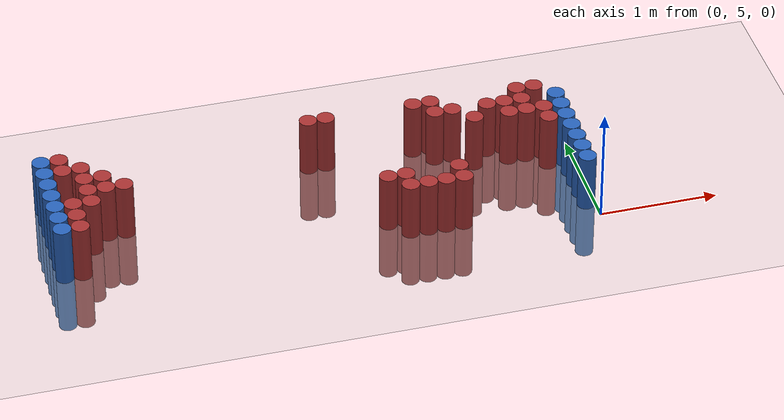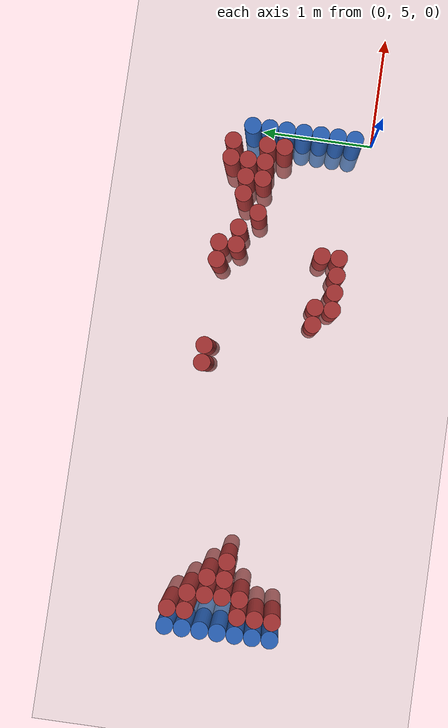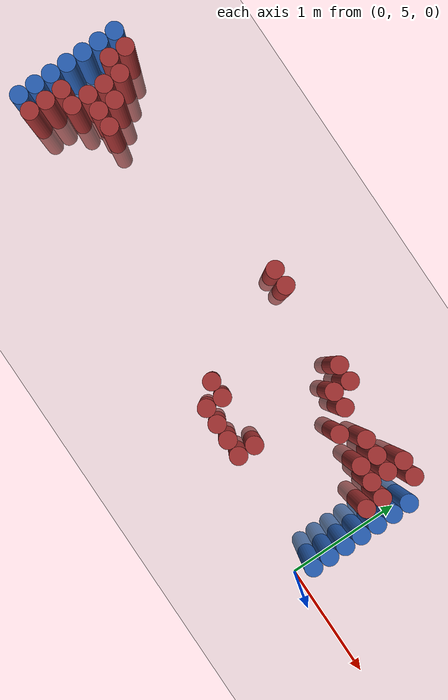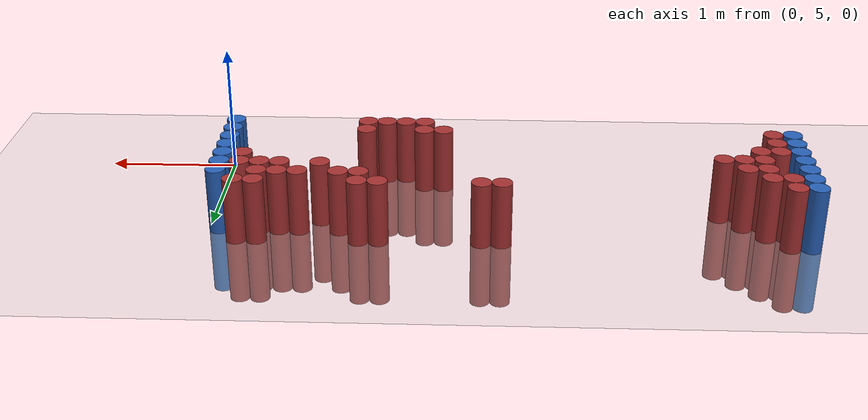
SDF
<sdf version="1.6">
 <world name="default">
  <model name="ground_plane">
   <static>1</static>
   <link name="link">
    <collision name="collision">
     <geometry><plane><normal>0 0 1</normal><size>100 100</size></plane></geometry>
     <surface><friction><ode><mu>100</mu><mu2>50</mu2></ode></friction></surface>
    </collision>
    <visual name="visual">
     <cast_shadows>0</cast_shadows>
     <geometry><plane><normal>0 0 1</normal><size>100 100</size></plane></geometry>
     <material>
      <script><uri>file://media/materials/scripts/gazebo.material</uri><name>Gazebo/Grey</name></script>
     </material>
    </visual>
   </link>
  </model>
  <model name="unit_cylinder_97">
   <static>1</static>
   <pose>-4.425000 5.325000 0.000000 0.000000 0.000000 0.000000</pose>
   <link name="link">
    <inertial>
     <mass>1</mass>
     <inertia><ixx>0.145833</ixx><ixy>0</ixy><ixz>0</ixz><iyy>0.145833</iyy><iyz>0</iyz><izz>0.125</izz></inertia>
    </inertial>
    <collision name="collision">
     <geometry><cylinder><radius>0.075000</radius><length>1</length></cylinder></geometry>
    </collision>
    <visual name="visual">
     <geometry><cylinder><radius>0.075000</radius><length>1</length></cylinder></geometry>
     <material>
      <ambient>0.152000 0.379000 0.720000 1</ambient>
      <diffuse>0.152000 0.379000 0.720000 1</diffuse>
     </material>
     <material>
      <script><name>Gazebo/Grey</name><uri>file://media/materials/scripts/gazebo.material</uri></script>
     </material>
    </visual>
   </link>
  </model>
  <model name="unit_cylinder_98">
   <static>1</static>
   <pose>-4.425000 5.475000 0.000000 0.000000 0.000000 0.000000</pose>
   <link name="link">
    <inertial>
     <mass>1</mass>
     <inertia><ixx>0.145833</ixx><ixy>0</ixy><ixz>0</ixz><iyy>0.145833</iyy><iyz>0</iyz><izz>0.125</izz></inertia>
    </inertial>
    <collision name="collision">
     <geometry><cylinder><radius>0.075000</radius><length>1</length></cylinder></geometry>
    </collision>
    <visual name="visual">
     <geometry><cylinder><radius>0.075000</radius><length>1</length></cylinder></geometry>
     <material>
      <ambient>0.152000 0.379000 0.720000 1</ambient>
      <diffuse>0.152000 0.379000 0.720000 1</diffuse>
     </material>
     <material>
      <script><name>Gazebo/Grey</name><uri>file://media/materials/scripts/gazebo.material</uri></script>
     </material>
    </visual>
   </link>
  </model>
  <model name="unit_cylinder_99">
   <static>1</static>
   <pose>-4.425000 5.625000 0.000000 0.000000 0.000000 0.000000</pose>
   <link name="link">
    <inertial>
     <mass>1</mass>
     <inertia><ixx>0.145833</ixx><ixy>0</ixy><ixz>0</ixz><iyy>0.145833</iyy><iyz>0</iyz><izz>0.125</izz></inertia>
    </inertial>
    <collision name="collision">
     <geometry><cylinder><radius>0.075000</radius><length>1</length></cylinder></geometry>
    </collision>
    <visual name="visual">
     <geometry><cylinder><radius>0.075000</radius><length>1</length></cylinder></geometry>
     <material>
      <ambient>0.152000 0.379000 0.720000 1</ambient>
      <diffuse>0.152000 0.379000 0.720000 1</diffuse>
     </material>
     <material>
      <script><name>Gazebo/Grey</name><uri>file://media/materials/scripts/gazebo.material</uri></script>
     </material>
    </visual>
   </link>
  </model>
  <model name="unit_cylinder_100">
   <static>1</static>
   <pose>-4.425000 5.775000 0.000000 0.000000 0.000000 0.000000</pose>
   <link name="link">
    <inertial>
     <mass>1</mass>
     <inertia><ixx>0.145833</ixx><ixy>0</ixy><ixz>0</ixz><iyy>0.145833</iyy><iyz>0</iyz><izz>0.125</izz></inertia>
    </inertial>
    <collision name="collision">
     <geometry><cylinder><radius>0.075000</radius><length>1</length></cylinder></geometry>
    </collision>
    <visual name="visual">
     <geometry><cylinder><radius>0.075000</radius><length>1</length></cylinder></geometry>
     <material>
      <ambient>0.152000 0.379000 0.720000 1</ambient>
      <diffuse>0.152000 0.379000 0.720000 1</diffuse>
     </material>
     <material>
      <script><name>Gazebo/Grey</name><uri>file://media/materials/scripts/gazebo.material</uri></script>
     </material>
    </visual>
   </link>
  </model>
  <model name="unit_cylinder_101">
   <static>1</static>
   <pose>-4.425000 5.925000 0.000000 0.000000 0.000000 0.000000</pose>
   <link name="link">
    <inertial>
     <mass>1</mass>
     <inertia><ixx>0.145833</ixx><ixy>0</ixy><ixz>0</ixz><iyy>0.145833</iyy><iyz>0</iyz><izz>0.125</izz></inertia>
    </inertial>
    <collision name="collision">
     <geometry><cylinder><radius>0.075000</radius><length>1</length></cylinder></geometry>
    </collision>
    <visual name="visual">
     <geometry><cylinder><radius>0.075000</radius><length>1</length></cylinder></geometry>
     <material>
      <ambient>0.152000 0.379000 0.720000 1</ambient>
      <diffuse>0.152000 0.379000 0.720000 1</diffuse>
     </material>
     <material>
      <script><name>Gazebo/Grey</name><uri>file://media/materials/scripts/gazebo.material</uri></script>
     </material>
    </visual>
   </link>
  </model>
  <model name="unit_cylinder_102">
   <static>1</static>
   <pose>-4.425000 6.075000 0.000000 0.000000 0.000000 0.000000</pose>
   <link name="link">
    <inertial>
     <mass>1</mass>
     <inertia><ixx>0.145833</ixx><ixy>0</ixy><ixz>0</ixz><iyy>0.145833</iyy><iyz>0</iyz><izz>0.125</izz></inertia>
    </inertial>
    <collision name="collision">
     <geometry><cylinder><radius>0.075000</radius><length>1</length></cylinder></geometry>
    </collision>
    <visual name="visual">
     <geometry><cylinder><radius>0.075000</radius><length>1</length></cylinder></geometry>
     <material>
      <ambient>0.152000 0.379000 0.720000 1</ambient>
      <diffuse>0.152000 0.379000 0.720000 1</diffuse>
     </material>
     <material>
      <script><name>Gazebo/Grey</name><uri>file://media/materials/scripts/gazebo.material</uri></script>
     </material>
    </visual>
   </link>
  </model>
  <model name="unit_cylinder_103">
   <static>1</static>
   <pose>-4.425000 6.225000 0.000000 0.000000 0.000000 0.000000</pose>
   <link name="link">
    <inertial>
     <mass>1</mass>
     <inertia><ixx>0.145833</ixx><ixy>0</ixy><ixz>0</ixz><iyy>0.145833</iyy><iyz>0</iyz><izz>0.125</izz></inertia>
    </inertial>
    <collision name="collision">
     <geometry><cylinder><radius>0.075000</radius><length>1</length></cylinder></geometry>
    </collision>
    <visual name="visual">
     <geometry><cylinder><radius>0.075000</radius><length>1</length></cylinder></geometry>
     <material>
      <ambient>0.152000 0.379000 0.720000 1</ambient>
      <diffuse>0.152000 0.379000 0.720000 1</diffuse>
     </material>
     <material>
      <script><name>Gazebo/Grey</name><uri>file://media/materials/scripts/gazebo.material</uri></script>
     </material>
    </visual>
   </link>
  </model>
  <model name="unit_cylinder_127">
   <static>1</static>
   <pose>-4.275000 5.325000 0.000000 0.000000 0.000000 0.000000</pose>
   <link name="link">
    <inertial>
     <mass>1</mass>
     <inertia><ixx>0.145833</ixx><ixy>0</ixy><ixz>0</ixz><iyy>0.145833</iyy><iyz>0</iyz><izz>0.125</izz></inertia>
    </inertial>
    <collision name="collision">
     <geometry><cylinder><radius>0.075000</radius><length>1</length></cylinder></geometry>
    </collision>
    <visual name="visual">
     <geometry><cylinder><radius>0.075000</radius><length>1</length></cylinder></geometry>
     <material>
      <ambient>0.648000 0.192000 0.192000 1</ambient>
      <diffuse>0.648000 0.192000 0.192000 1</diffuse>
     </material>
     <material>
      <script><name>Gazebo/Grey</name><uri>file://media/materials/scripts/gazebo.material</uri></script>
     </material>
    </visual>
   </link>
  </model>
  <model name="unit_cylinder_128">
   <static>1</static>
   <pose>-4.275000 5.475000 0.000000 0.000000 0.000000 0.000000</pose>
   <link name="link">
    <inertial>
     <mass>1</mass>
     <inertia><ixx>0.145833</ixx><ixy>0</ixy><ixz>0</ixz><iyy>0.145833</iyy><iyz>0</iyz><izz>0.125</izz></inertia>
    </inertial>
    <collision name="collision">
     <geometry><cylinder><radius>0.075000</radius><length>1</length></cylinder></geometry>
    </collision>
    <visual name="visual">
     <geometry><cylinder><radius>0.075000</radius><length>1</length></cylinder></geometry>
     <material>
      <ambient>0.648000 0.192000 0.192000 1</ambient>
      <diffuse>0.648000 0.192000 0.192000 1</diffuse>
     </material>
     <material>
      <script><name>Gazebo/Grey</name><uri>file://media/materials/scripts/gazebo.material</uri></script>
     </material>
    </visual>
   </link>
  </model>
  <model name="unit_cylinder_129">
   <static>1</static>
   <pose>-4.275000 5.625000 0.000000 0.000000 0.000000 0.000000</pose>
   <link name="link">
    <inertial>
     <mass>1</mass>
     <inertia><ixx>0.145833</ixx><ixy>0</ixy><ixz>0</ixz><iyy>0.145833</iyy><iyz>0</iyz><izz>0.125</izz></inertia>
    </inertial>
    <collision name="collision">
     <geometry><cylinder><radius>0.075000</radius><length>1</length></cylinder></geometry>
    </collision>
    <visual name="visual">
     <geometry><cylinder><radius>0.075000</radius><length>1</length></cylinder></geometry>
     <material>
      <ambient>0.648000 0.192000 0.192000 1</ambient>
      <diffuse>0.648000 0.192000 0.192000 1</diffuse>
     </material>
     <material>
      <script><name>Gazebo/Grey</name><uri>file://media/materials/scripts/gazebo.material</uri></script>
     </material>
    </visual>
   </link>
  </model>
  <model name="unit_cylinder_130">
   <static>1</static>
   <pose>-4.275000 6.075000 0.000000 0.000000 0.000000 0.000000</pose>
   <link name="link">
    <inertial>
     <mass>1</mass>
     <inertia><ixx>0.145833</ixx><ixy>0</ixy><ixz>0</ixz><iyy>0.145833</iyy><iyz>0</iyz><izz>0.125</izz></inertia>
    </inertial>
    <collision name="collision">
     <geometry><cylinder><radius>0.075000</radius><length>1</length></cylinder></geometry>
    </collision>
    <visual name="visual">
     <geometry><cylinder><radius>0.075000</radius><length>1</length></cylinder></geometry>
     <material>
      <ambient>0.648000 0.192000 0.192000 1</ambient>
      <diffuse>0.648000 0.192000 0.192000 1</diffuse>
     </material>
     <material>
      <script><name>Gazebo/Grey</name><uri>file://media/materials/scripts/gazebo.material</uri></script>
     </material>
    </visual>
   </link>
  </model>
  <model name="unit_cylinder_131">
   <static>1</static>
   <pose>-4.275000 6.225000 0.000000 0.000000 0.000000 0.000000</pose>
   <link name="link">
    <inertial>
     <mass>1</mass>
     <inertia><ixx>0.145833</ixx><ixy>0</ixy><ixz>0</ixz><iyy>0.145833</iyy><iyz>0</iyz><izz>0.125</izz></inertia>
    </inertial>
    <collision name="collision">
     <geometry><cylinder><radius>0.075000</radius><length>1</length></cylinder></geometry>
    </collision>
    <visual name="visual">
     <geometry><cylinder><radius>0.075000</radius><length>1</length></cylinder></geometry>
     <material>
      <ambient>0.648000 0.192000 0.192000 1</ambient>
      <diffuse>0.648000 0.192000 0.192000 1</diffuse>
     </material>
     <material>
      <script><name>Gazebo/Grey</name><uri>file://media/materials/scripts/gazebo.material</uri></script>
     </material>
    </visual>
   </link>
  </model>
  <model name="unit_cylinder_151">
   <static>1</static>
   <pose>-4.125000 5.625000 0.000000 0.000000 0.000000 0.000000</pose>
   <link name="link">
    <inertial>
     <mass>1</mass>
     <inertia><ixx>0.145833</ixx><ixy>0</ixy><ixz>0</ixz><iyy>0.145833</iyy><iyz>0</iyz><izz>0.125</izz></inertia>
    </inertial>
    <collision name="collision">
     <geometry><cylinder><radius>0.075000</radius><length>1</length></cylinder></geometry>
    </collision>
    <visual name="visual">
     <geometry><cylinder><radius>0.075000</radius><length>1</length></cylinder></geometry>
     <material>
      <ambient>0.648000 0.192000 0.192000 1</ambient>
      <diffuse>0.648000 0.192000 0.192000 1</diffuse>
     </material>
     <material>
      <script><name>Gazebo/Grey</name><uri>file://media/materials/scripts/gazebo.material</uri></script>
     </material>
    </visual>
   </link>
  </model>
  <model name="unit_cylinder_152">
   <static>1</static>
   <pose>-4.125000 5.775000 0.000000 0.000000 0.000000 0.000000</pose>
   <link name="link">
    <inertial>
     <mass>1</mass>
     <inertia><ixx>0.145833</ixx><ixy>0</ixy><ixz>0</ixz><iyy>0.145833</iyy><iyz>0</iyz><izz>0.125</izz></inertia>
    </inertial>
    <collision name="collision">
     <geometry><cylinder><radius>0.075000</radius><length>1</length></cylinder></geometry>
    </collision>
    <visual name="visual">
     <geometry><cylinder><radius>0.075000</radius><length>1</length></cylinder></geometry>
     <material>
      <ambient>0.648000 0.192000 0.192000 1</ambient>
      <diffuse>0.648000 0.192000 0.192000 1</diffuse>
     </material>
     <material>
      <script><name>Gazebo/Grey</name><uri>file://media/materials/scripts/gazebo.material</uri></script>
     </material>
    </visual>
   </link>
  </model>
  <model name="unit_cylinder_153">
   <static>1</static>
   <pose>-4.125000 5.925000 0.000000 0.000000 0.000000 0.000000</pose>
   <link name="link">
    <inertial>
     <mass>1</mass>
     <inertia><ixx>0.145833</ixx><ixy>0</ixy><ixz>0</ixz><iyy>0.145833</iyy><iyz>0</iyz><izz>0.125</izz></inertia>
    </inertial>
    <collision name="collision">
     <geometry><cylinder><radius>0.075000</radius><length>1</length></cylinder></geometry>
    </collision>
    <visual name="visual">
     <geometry><cylinder><radius>0.075000</radius><length>1</length></cylinder></geometry>
     <material>
      <ambient>0.648000 0.192000 0.192000 1</ambient>
      <diffuse>0.648000 0.192000 0.192000 1</diffuse>
     </material>
     <material>
      <script><name>Gazebo/Grey</name><uri>file://media/materials/scripts/gazebo.material</uri></script>
     </material>
    </visual>
   </link>
  </model>
  <model name="unit_cylinder_154">
   <static>1</static>
   <pose>-4.125000 6.075000 0.000000 0.000000 0.000000 0.000000</pose>
   <link name="link">
    <inertial>
     <mass>1</mass>
     <inertia><ixx>0.145833</ixx><ixy>0</ixy><ixz>0</ixz><iyy>0.145833</iyy><iyz>0</iyz><izz>0.125</izz></inertia>
    </inertial>
    <collision name="collision">
     <geometry><cylinder><radius>0.075000</radius><length>1</length></cylinder></geometry>
    </collision>
    <visual name="visual">
     <geometry><cylinder><radius>0.075000</radius><length>1</length></cylinder></geometry>
     <material>
      <ambient>0.648000 0.192000 0.192000 1</ambient>
      <diffuse>0.648000 0.192000 0.192000 1</diffuse>
     </material>
     <material>
      <script><name>Gazebo/Grey</name><uri>file://media/materials/scripts/gazebo.material</uri></script>
     </material>
    </visual>
   </link>
  </model>
  <model name="unit_cylinder_158">
   <static>1</static>
   <pose>-3.975000 5.775000 0.000000 0.000000 0.000000 0.000000</pose>
   <link name="link">
    <inertial>
     <mass>1</mass>
     <inertia><ixx>0.145833</ixx><ixy>0</ixy><ixz>0</ixz><iyy>0.145833</iyy><iyz>0</iyz><izz>0.125</izz></inertia>
    </inertial>
    <collision name="collision">
     <geometry><cylinder><radius>0.075000</radius><length>1</length></cylinder></geometry>
    </collision>
    <visual name="visual">
     <geometry><cylinder><radius>0.075000</radius><length>1</length></cylinder></geometry>
     <material>
      <ambient>0.648000 0.192000 0.192000 1</ambient>
      <diffuse>0.648000 0.192000 0.192000 1</diffuse>
     </material>
     <material>
      <script><name>Gazebo/Grey</name><uri>file://media/materials/scripts/gazebo.material</uri></script>
     </material>
    </visual>
   </link>
  </model>
  <model name="unit_cylinder_159">
   <static>1</static>
   <pose>-3.975000 5.925000 0.000000 0.000000 0.000000 0.000000</pose>
   <link name="link">
    <inertial>
     <mass>1</mass>
     <inertia><ixx>0.145833</ixx><ixy>0</ixy><ixz>0</ixz><iyy>0.145833</iyy><iyz>0</iyz><izz>0.125</izz></inertia>
    </inertial>
    <collision name="collision">
     <geometry><cylinder><radius>0.075000</radius><length>1</length></cylinder></geometry>
    </collision>
    <visual name="visual">
     <geometry><cylinder><radius>0.075000</radius><length>1</length></cylinder></geometry>
     <material>
      <ambient>0.648000 0.192000 0.192000 1</ambient>
      <diffuse>0.648000 0.192000 0.192000 1</diffuse>
     </material>
     <material>
      <script><name>Gazebo/Grey</name><uri>file://media/materials/scripts/gazebo.material</uri></script>
     </material>
    </visual>
   </link>
  </model>
  <model name="unit_cylinder_162">
   <static>1</static>
   <pose>-3.825000 5.775000 0.000000 0.000000 0.000000 0.000000</pose>
   <link name="link">
    <inertial>
     <mass>1</mass>
     <inertia><ixx>0.145833</ixx><ixy>0</ixy><ixz>0</ixz><iyy>0.145833</iyy><iyz>0</iyz><izz>0.125</izz></inertia>
    </inertial>
    <collision name="collision">
     <geometry><cylinder><radius>0.075000</radius><length>1</length></cylinder></geometry>
    </collision>
    <visual name="visual">
     <geometry><cylinder><radius>0.075000</radius><length>1</length></cylinder></geometry>
     <material>
      <ambient>0.648000 0.192000 0.192000 1</ambient>
      <diffuse>0.648000 0.192000 0.192000 1</diffuse>
     </material>
     <material>
      <script><name>Gazebo/Grey</name><uri>file://media/materials/scripts/gazebo.material</uri></script>
     </material>
    </visual>
   </link>
  </model>
  <model name="unit_cylinder_191">
   <static>1</static>
   <pose>-2.175000 6.225000 0.000000 0.000000 0.000000 0.000000</pose>
   <link name="link">
    <inertial>
     <mass>1</mass>
     <inertia><ixx>0.145833</ixx><ixy>0</ixy><ixz>0</ixz><iyy>0.145833</iyy><iyz>0</iyz><izz>0.125</izz></inertia>
    </inertial>
    <collision name="collision">
     <geometry><cylinder><radius>0.075000</radius><length>1</length></cylinder></geometry>
    </collision>
    <visual name="visual">
     <geometry><cylinder><radius>0.075000</radius><length>1</length></cylinder></geometry>
     <material>
      <ambient>0.648000 0.192000 0.192000 1</ambient>
      <diffuse>0.648000 0.192000 0.192000 1</diffuse>
     </material>
     <material>
      <script><name>Gazebo/Grey</name><uri>file://media/materials/scripts/gazebo.material</uri></script>
     </material>
    </visual>
   </link>
  </model>
  <model name="unit_cylinder_195">
   <static>1</static>
   <pose>-2.025000 6.225000 0.000000 0.000000 0.000000 0.000000</pose>
   <link name="link">
    <inertial>
     <mass>1</mass>
     <inertia><ixx>0.145833</ixx><ixy>0</ixy><ixz>0</ixz><iyy>0.145833</iyy><iyz>0</iyz><izz>0.125</izz></inertia>
    </inertial>
    <collision name="collision">
     <geometry><cylinder><radius>0.075000</radius><length>1</length></cylinder></geometry>
    </collision>
    <visual name="visual">
     <geometry><cylinder><radius>0.075000</radius><length>1</length></cylinder></geometry>
     <material>
      <ambient>0.648000 0.192000 0.192000 1</ambient>
      <diffuse>0.648000 0.192000 0.192000 1</diffuse>
     </material>
     <material>
      <script><name>Gazebo/Grey</name><uri>file://media/materials/scripts/gazebo.material</uri></script>
     </material>
    </visual>
   </link>
  </model>
  <model name="unit_cylinder_206">
   <static>1</static>
   <pose>-1.725000 5.325000 0.000000 0.000000 0.000000 0.000000</pose>
   <link name="link">
    <inertial>
     <mass>1</mass>
     <inertia><ixx>0.145833</ixx><ixy>0</ixy><ixz>0</ixz><iyy>0.145833</iyy><iyz>0</iyz><izz>0.125</izz></inertia>
    </inertial>
    <collision name="collision">
     <geometry><cylinder><radius>0.075000</radius><length>1</length></cylinder></geometry>
    </collision>
    <visual name="visual">
     <geometry><cylinder><radius>0.075000</radius><length>1</length></cylinder></geometry>
     <material>
      <ambient>0.648000 0.192000 0.192000 1</ambient>
      <diffuse>0.648000 0.192000 0.192000 1</diffuse>
     </material>
     <material>
      <script><name>Gazebo/Grey</name><uri>file://media/materials/scripts/gazebo.material</uri></script>
     </material>
    </visual>
   </link>
  </model>
  <model name="unit_cylinder_210">
   <static>1</static>
   <pose>-1.575000 5.175000 0.000000 0.000000 0.000000 0.000000</pose>
   <link name="link">
    <inertial>
     <mass>1</mass>
     <inertia><ixx>0.145833</ixx><ixy>0</ixy><ixz>0</ixz><iyy>0.145833</iyy><iyz>0</iyz><izz>0.125</izz></inertia>
    </inertial>
    <collision name="collision">
     <geometry><cylinder><radius>0.075000</radius><length>1</length></cylinder></geometry>
    </collision>
    <visual name="visual">
     <geometry><cylinder><radius>0.075000</radius><length>1</length></cylinder></geometry>
     <material>
      <ambient>0.648000 0.192000 0.192000 1</ambient>
      <diffuse>0.648000 0.192000 0.192000 1</diffuse>
     </material>
     <material>
      <script><name>Gazebo/Grey</name><uri>file://media/materials/scripts/gazebo.material</uri></script>
     </material>
    </visual>
   </link>
  </model>
  <model name="unit_cylinder_211">
   <static>1</static>
   <pose>-1.575000 5.325000 0.000000 0.000000 0.000000 0.000000</pose>
   <link name="link">
    <inertial>
     <mass>1</mass>
     <inertia><ixx>0.145833</ixx><ixy>0</ixy><ixz>0</ixz><iyy>0.145833</iyy><iyz>0</iyz><izz>0.125</izz></inertia>
    </inertial>
    <collision name="collision">
     <geometry><cylinder><radius>0.075000</radius><length>1</length></cylinder></geometry>
    </collision>
    <visual name="visual">
     <geometry><cylinder><radius>0.075000</radius><length>1</length></cylinder></geometry>
     <material>
      <ambient>0.648000 0.192000 0.192000 1</ambient>
      <diffuse>0.648000 0.192000 0.192000 1</diffuse>
     </material>
     <material>
      <script><name>Gazebo/Grey</name><uri>file://media/materials/scripts/gazebo.material</uri></script>
     </material>
    </visual>
   </link>
  </model>
  <model name="unit_cylinder_215">
   <static>1</static>
   <pose>-1.425000 5.175000 0.000000 0.000000 0.000000 0.000000</pose>
   <link name="link">
    <inertial>
     <mass>1</mass>
     <inertia><ixx>0.145833</ixx><ixy>0</ixy><ixz>0</ixz><iyy>0.145833</iyy><iyz>0</iyz><izz>0.125</izz></inertia>
    </inertial>
    <collision name="collision">
     <geometry><cylinder><radius>0.075000</radius><length>1</length></cylinder></geometry>
    </collision>
    <visual name="visual">
     <geometry><cylinder><radius>0.075000</radius><length>1</length></cylinder></geometry>
     <material>
      <ambient>0.648000 0.192000 0.192000 1</ambient>
      <diffuse>0.648000 0.192000 0.192000 1</diffuse>
     </material>
     <material>
      <script><name>Gazebo/Grey</name><uri>file://media/materials/scripts/gazebo.material</uri></script>
     </material>
    </visual>
   </link>
  </model>
  <model name="unit_cylinder_220">
   <static>1</static>
   <pose>-1.275000 5.175000 0.000000 0.000000 0.000000 0.000000</pose>
   <link name="link">
    <inertial>
     <mass>1</mass>
     <inertia><ixx>0.145833</ixx><ixy>0</ixy><ixz>0</ixz><iyy>0.145833</iyy><iyz>0</iyz><izz>0.125</izz></inertia>
    </inertial>
    <collision name="collision">
     <geometry><cylinder><radius>0.075000</radius><length>1</length></cylinder></geometry>
    </collision>
    <visual name="visual">
     <geometry><cylinder><radius>0.075000</radius><length>1</length></cylinder></geometry>
     <material>
      <ambient>0.648000 0.192000 0.192000 1</ambient>
      <diffuse>0.648000 0.192000 0.192000 1</diffuse>
     </material>
     <material>
      <script><name>Gazebo/Grey</name><uri>file://media/materials/scripts/gazebo.material</uri></script>
     </material>
    </visual>
   </link>
  </model>
  <model name="unit_cylinder_221">
   <static>1</static>
   <pose>-1.275000 6.225000 0.000000 0.000000 0.000000 0.000000</pose>
   <link name="link">
    <inertial>
     <mass>1</mass>
     <inertia><ixx>0.145833</ixx><ixy>0</ixy><ixz>0</ixz><iyy>0.145833</iyy><iyz>0</iyz><izz>0.125</izz></inertia>
    </inertial>
    <collision name="collision">
     <geometry><cylinder><radius>0.075000</radius><length>1</length></cylinder></geometry>
    </collision>
    <visual name="visual">
     <geometry><cylinder><radius>0.075000</radius><length>1</length></cylinder></geometry>
     <material>
      <ambient>0.648000 0.192000 0.192000 1</ambient>
      <diffuse>0.648000 0.192000 0.192000 1</diffuse>
     </material>
     <material>
      <script><name>Gazebo/Grey</name><uri>file://media/materials/scripts/gazebo.material</uri></script>
     </material>
    </visual>
   </link>
  </model>
  <model name="unit_cylinder_225">
   <static>1</static>
   <pose>-1.125000 5.175000 0.000000 0.000000 0.000000 0.000000</pose>
   <link name="link">
    <inertial>
     <mass>1</mass>
     <inertia><ixx>0.145833</ixx><ixy>0</ixy><ixz>0</ixz><iyy>0.145833</iyy><iyz>0</iyz><izz>0.125</izz></inertia>
    </inertial>
    <collision name="collision">
     <geometry><cylinder><radius>0.075000</radius><length>1</length></cylinder></geometry>
    </collision>
    <visual name="visual">
     <geometry><cylinder><radius>0.075000</radius><length>1</length></cylinder></geometry>
     <material>
      <ambient>0.648000 0.192000 0.192000 1</ambient>
      <diffuse>0.648000 0.192000 0.192000 1</diffuse>
     </material>
     <material>
      <script><name>Gazebo/Grey</name><uri>file://media/materials/scripts/gazebo.material</uri></script>
     </material>
    </visual>
   </link>
  </model>
  <model name="unit_cylinder_226">
   <static>1</static>
   <pose>-1.125000 5.325000 0.000000 0.000000 0.000000 0.000000</pose>
   <link name="link">
    <inertial>
     <mass>1</mass>
     <inertia><ixx>0.145833</ixx><ixy>0</ixy><ixz>0</ixz><iyy>0.145833</iyy><iyz>0</iyz><izz>0.125</izz></inertia>
    </inertial>
    <collision name="collision">
     <geometry><cylinder><radius>0.075000</radius><length>1</length></cylinder></geometry>
    </collision>
    <visual name="visual">
     <geometry><cylinder><radius>0.075000</radius><length>1</length></cylinder></geometry>
     <material>
      <ambient>0.648000 0.192000 0.192000 1</ambient>
      <diffuse>0.648000 0.192000 0.192000 1</diffuse>
     </material>
     <material>
      <script><name>Gazebo/Grey</name><uri>file://media/materials/scripts/gazebo.material</uri></script>
     </material>
    </visual>
   </link>
  </model>
  <model name="unit_cylinder_227">
   <static>1</static>
   <pose>-1.125000 6.075000 0.000000 0.000000 0.000000 0.000000</pose>
   <link name="link">
    <inertial>
     <mass>1</mass>
     <inertia><ixx>0.145833</ixx><ixy>0</ixy><ixz>0</ixz><iyy>0.145833</iyy><iyz>0</iyz><izz>0.125</izz></inertia>
    </inertial>
    <collision name="collision">
     <geometry><cylinder><radius>0.075000</radius><length>1</length></cylinder></geometry>
    </collision>
    <visual name="visual">
     <geometry><cylinder><radius>0.075000</radius><length>1</length></cylinder></geometry>
     <material>
      <ambient>0.648000 0.192000 0.192000 1</ambient>
      <diffuse>0.648000 0.192000 0.192000 1</diffuse>
     </material>
     <material>
      <script><name>Gazebo/Grey</name><uri>file://media/materials/scripts/gazebo.material</uri></script>
     </material>
    </visual>
   </link>
  </model>
  <model name="unit_cylinder_228">
   <static>1</static>
   <pose>-1.125000 6.225000 0.000000 0.000000 0.000000 0.000000</pose>
   <link name="link">
    <inertial>
     <mass>1</mass>
     <inertia><ixx>0.145833</ixx><ixy>0</ixy><ixz>0</ixz><iyy>0.145833</iyy><iyz>0</iyz><izz>0.125</izz></inertia>
    </inertial>
    <collision name="collision">
     <geometry><cylinder><radius>0.075000</radius><length>1</length></cylinder></geometry>
    </collision>
    <visual name="visual">
     <geometry><cylinder><radius>0.075000</radius><length>1</length></cylinder></geometry>
     <material>
      <ambient>0.648000 0.192000 0.192000 1</ambient>
      <diffuse>0.648000 0.192000 0.192000 1</diffuse>
     </material>
     <material>
      <script><name>Gazebo/Grey</name><uri>file://media/materials/scripts/gazebo.material</uri></script>
     </material>
    </visual>
   </link>
  </model>
  <model name="unit_cylinder_231">
   <static>1</static>
   <pose>-0.975000 6.075000 0.000000 0.000000 0.000000 0.000000</pose>
   <link name="link">
    <inertial>
     <mass>1</mass>
     <inertia><ixx>0.145833</ixx><ixy>0</ixy><ixz>0</ixz><iyy>0.145833</iyy><iyz>0</iyz><izz>0.125</izz></inertia>
    </inertial>
    <collision name="collision">
     <geometry><cylinder><radius>0.075000</radius><length>1</length></cylinder></geometry>
    </collision>
    <visual name="visual">
     <geometry><cylinder><radius>0.075000</radius><length>1</length></cylinder></geometry>
     <material>
      <ambient>0.648000 0.192000 0.192000 1</ambient>
      <diffuse>0.648000 0.192000 0.192000 1</diffuse>
     </material>
     <material>
      <script><name>Gazebo/Grey</name><uri>file://media/materials/scripts/gazebo.material</uri></script>
     </material>
    </visual>
   </link>
  </model>
  <model name="unit_cylinder_232">
   <static>1</static>
   <pose>-0.825000 5.925000 0.000000 0.000000 0.000000 0.000000</pose>
   <link name="link">
    <inertial>
     <mass>1</mass>
     <inertia><ixx>0.145833</ixx><ixy>0</ixy><ixz>0</ixz><iyy>0.145833</iyy><iyz>0</iyz><izz>0.125</izz></inertia>
    </inertial>
    <collision name="collision">
     <geometry><cylinder><radius>0.075000</radius><length>1</length></cylinder></geometry>
    </collision>
    <visual name="visual">
     <geometry><cylinder><radius>0.075000</radius><length>1</length></cylinder></geometry>
     <material>
      <ambient>0.648000 0.192000 0.192000 1</ambient>
      <diffuse>0.648000 0.192000 0.192000 1</diffuse>
     </material>
     <material>
      <script><name>Gazebo/Grey</name><uri>file://media/materials/scripts/gazebo.material</uri></script>
     </material>
    </visual>
   </link>
  </model>
  <model name="unit_cylinder_233">
   <static>1</static>
   <pose>-0.675000 6.075000 0.000000 0.000000 0.000000 0.000000</pose>
   <link name="link">
    <inertial>
     <mass>1</mass>
     <inertia><ixx>0.145833</ixx><ixy>0</ixy><ixz>0</ixz><iyy>0.145833</iyy><iyz>0</iyz><izz>0.125</izz></inertia>
    </inertial>
    <collision name="collision">
     <geometry><cylinder><radius>0.075000</radius><length>1</length></cylinder></geometry>
    </collision>
    <visual name="visual">
     <geometry><cylinder><radius>0.075000</radius><length>1</length></cylinder></geometry>
     <material>
      <ambient>0.648000 0.192000 0.192000 1</ambient>
      <diffuse>0.648000 0.192000 0.192000 1</diffuse>
     </material>
     <material>
      <script><name>Gazebo/Grey</name><uri>file://media/materials/scripts/gazebo.material</uri></script>
     </material>
    </visual>
   </link>
  </model>
  <model name="unit_cylinder_237">
   <static>1</static>
   <pose>-0.525000 5.925000 0.000000 0.000000 0.000000 0.000000</pose>
   <link name="link">
    <inertial>
     <mass>1</mass>
     <inertia><ixx>0.145833</ixx><ixy>0</ixy><ixz>0</ixz><iyy>0.145833</iyy><iyz>0</iyz><izz>0.125</izz></inertia>
    </inertial>
    <collision name="collision">
     <geometry><cylinder><radius>0.075000</radius><length>1</length></cylinder></geometry>
    </collision>
    <visual name="visual">
     <geometry><cylinder><radius>0.075000</radius><length>1</length></cylinder></geometry>
     <material>
      <ambient>0.648000 0.192000 0.192000 1</ambient>
      <diffuse>0.648000 0.192000 0.192000 1</diffuse>
     </material>
     <material>
      <script><name>Gazebo/Grey</name><uri>file://media/materials/scripts/gazebo.material</uri></script>
     </material>
    </visual>
   </link>
  </model>
  <model name="unit_cylinder_238">
   <static>1</static>
   <pose>-0.525000 6.075000 0.000000 0.000000 0.000000 0.000000</pose>
   <link name="link">
    <inertial>
     <mass>1</mass>
     <inertia><ixx>0.145833</ixx><ixy>0</ixy><ixz>0</ixz><iyy>0.145833</iyy><iyz>0</iyz><izz>0.125</izz></inertia>
    </inertial>
    <collision name="collision">
     <geometry><cylinder><radius>0.075000</radius><length>1</length></cylinder></geometry>
    </collision>
    <visual name="visual">
     <geometry><cylinder><radius>0.075000</radius><length>1</length></cylinder></geometry>
     <material>
      <ambient>0.648000 0.192000 0.192000 1</ambient>
      <diffuse>0.648000 0.192000 0.192000 1</diffuse>
     </material>
     <material>
      <script><name>Gazebo/Grey</name><uri>file://media/materials/scripts/gazebo.material</uri></script>
     </material>
    </visual>
   </link>
  </model>
  <model name="unit_cylinder_243">
   <static>1</static>
   <pose>-0.375000 5.925000 0.000000 0.000000 0.000000 0.000000</pose>
   <link name="link">
    <inertial>
     <mass>1</mass>
     <inertia><ixx>0.145833</ixx><ixy>0</ixy><ixz>0</ixz><iyy>0.145833</iyy><iyz>0</iyz><izz>0.125</izz></inertia>
    </inertial>
    <collision name="collision">
     <geometry><cylinder><radius>0.075000</radius><length>1</length></cylinder></geometry>
    </collision>
    <visual name="visual">
     <geometry><cylinder><radius>0.075000</radius><length>1</length></cylinder></geometry>
     <material>
      <ambient>0.648000 0.192000 0.192000 1</ambient>
      <diffuse>0.648000 0.192000 0.192000 1</diffuse>
     </material>
     <material>
      <script><name>Gazebo/Grey</name><uri>file://media/materials/scripts/gazebo.material</uri></script>
     </material>
    </visual>
   </link>
  </model>
  <model name="unit_cylinder_244">
   <static>1</static>
   <pose>-0.375000 6.075000 0.000000 0.000000 0.000000 0.000000</pose>
   <link name="link">
    <inertial>
     <mass>1</mass>
     <inertia><ixx>0.145833</ixx><ixy>0</ixy><ixz>0</ixz><iyy>0.145833</iyy><iyz>0</iyz><izz>0.125</izz></inertia>
    </inertial>
    <collision name="collision">
     <geometry><cylinder><radius>0.075000</radius><length>1</length></cylinder></geometry>
    </collision>
    <visual name="visual">
     <geometry><cylinder><radius>0.075000</radius><length>1</length></cylinder></geometry>
     <material>
      <ambient>0.648000 0.192000 0.192000 1</ambient>
      <diffuse>0.648000 0.192000 0.192000 1</diffuse>
     </material>
     <material>
      <script><name>Gazebo/Grey</name><uri>file://media/materials/scripts/gazebo.material</uri></script>
     </material>
    </visual>
   </link>
  </model>
  <model name="unit_cylinder_245">
   <static>1</static>
   <pose>-0.375000 6.225000 0.000000 0.000000 0.000000 0.000000</pose>
   <link name="link">
    <inertial>
     <mass>1</mass>
     <inertia><ixx>0.145833</ixx><ixy>0</ixy><ixz>0</ixz><iyy>0.145833</iyy><iyz>0</iyz><izz>0.125</izz></inertia>
    </inertial>
    <collision name="collision">
     <geometry><cylinder><radius>0.075000</radius><length>1</length></cylinder></geometry>
    </collision>
    <visual name="visual">
     <geometry><cylinder><radius>0.075000</radius><length>1</length></cylinder></geometry>
     <material>
      <ambient>0.648000 0.192000 0.192000 1</ambient>
      <diffuse>0.648000 0.192000 0.192000 1</diffuse>
     </material>
     <material>
      <script><name>Gazebo/Grey</name><uri>file://media/materials/scripts/gazebo.material</uri></script>
     </material>
    </visual>
   </link>
  </model>
  <model name="unit_cylinder_247">
   <static>1</static>
   <pose>-0.225000 5.775000 0.000000 0.000000 0.000000 0.000000</pose>
   <link name="link">
    <inertial>
     <mass>1</mass>
     <inertia><ixx>0.145833</ixx><ixy>0</ixy><ixz>0</ixz><iyy>0.145833</iyy><iyz>0</iyz><izz>0.125</izz></inertia>
    </inertial>
    <collision name="collision">
     <geometry><cylinder><radius>0.075000</radius><length>1</length></cylinder></geometry>
    </collision>
    <visual name="visual">
     <geometry><cylinder><radius>0.075000</radius><length>1</length></cylinder></geometry>
     <material>
      <ambient>0.648000 0.192000 0.192000 1</ambient>
      <diffuse>0.648000 0.192000 0.192000 1</diffuse>
     </material>
     <material>
      <script><name>Gazebo/Grey</name><uri>file://media/materials/scripts/gazebo.material</uri></script>
     </material>
    </visual>
   </link>
  </model>
  <model name="unit_cylinder_248">
   <static>1</static>
   <pose>-0.225000 5.925000 0.000000 0.000000 0.000000 0.000000</pose>
   <link name="link">
    <inertial>
     <mass>1</mass>
     <inertia><ixx>0.145833</ixx><ixy>0</ixy><ixz>0</ixz><iyy>0.145833</iyy><iyz>0</iyz><izz>0.125</izz></inertia>
    </inertial>
    <collision name="collision">
     <geometry><cylinder><radius>0.075000</radius><length>1</length></cylinder></geometry>
    </collision>
    <visual name="visual">
     <geometry><cylinder><radius>0.075000</radius><length>1</length></cylinder></geometry>
     <material>
      <ambient>0.648000 0.192000 0.192000 1</ambient>
      <diffuse>0.648000 0.192000 0.192000 1</diffuse>
     </material>
     <material>
      <script><name>Gazebo/Grey</name><uri>file://media/materials/scripts/gazebo.material</uri></script>
     </material>
    </visual>
   </link>
  </model>
  <model name="unit_cylinder_249">
   <static>1</static>
   <pose>-0.225000 6.225000 0.000000 0.000000 0.000000 0.000000</pose>
   <link name="link">
    <inertial>
     <mass>1</mass>
     <inertia><ixx>0.145833</ixx><ixy>0</ixy><ixz>0</ixz><iyy>0.145833</iyy><iyz>0</iyz><izz>0.125</izz></inertia>
    </inertial>
    <collision name="collision">
     <geometry><cylinder><radius>0.075000</radius><length>1</length></cylinder></geometry>
    </collision>
    <visual name="visual">
     <geometry><cylinder><radius>0.075000</radius><length>1</length></cylinder></geometry>
     <material>
      <ambient>0.648000 0.192000 0.192000 1</ambient>
      <diffuse>0.648000 0.192000 0.192000 1</diffuse>
     </material>
     <material>
      <script><name>Gazebo/Grey</name><uri>file://media/materials/scripts/gazebo.material</uri></script>
     </material>
    </visual>
   </link>
  </model>
  <model name="unit_cylinder_263">
   <static>1</static>
   <pose>-0.075000 5.175000 0.000000 0.000000 0.000000 0.000000</pose>
   <link name="link">
    <inertial>
     <mass>1</mass>
     <inertia><ixx>0.145833</ixx><ixy>0</ixy><ixz>0</ixz><iyy>0.145833</iyy><iyz>0</iyz><izz>0.125</izz></inertia>
    </inertial>
    <collision name="collision">
     <geometry><cylinder><radius>0.075000</radius><length>1</length></cylinder></geometry>
    </collision>
    <visual name="visual">
     <geometry><cylinder><radius>0.075000</radius><length>1</length></cylinder></geometry>
     <material>
      <ambient>0.152000 0.379000 0.720000 1</ambient>
      <diffuse>0.152000 0.379000 0.720000 1</diffuse>
     </material>
     <material>
      <script><name>Gazebo/Grey</name><uri>file://media/materials/scripts/gazebo.material</uri></script>
     </material>
    </visual>
   </link>
  </model>
  <model name="unit_cylinder_264">
   <static>1</static>
   <pose>-0.075000 5.325000 0.000000 0.000000 0.000000 0.000000</pose>
   <link name="link">
    <inertial>
     <mass>1</mass>
     <inertia><ixx>0.145833</ixx><ixy>0</ixy><ixz>0</ixz><iyy>0.145833</iyy><iyz>0</iyz><izz>0.125</izz></inertia>
    </inertial>
    <collision name="collision">
     <geometry><cylinder><radius>0.075000</radius><length>1</length></cylinder></geometry>
    </collision>
    <visual name="visual">
     <geometry><cylinder><radius>0.075000</radius><length>1</length></cylinder></geometry>
     <material>
      <ambient>0.152000 0.379000 0.720000 1</ambient>
      <diffuse>0.152000 0.379000 0.720000 1</diffuse>
     </material>
     <material>
      <script><name>Gazebo/Grey</name><uri>file://media/materials/scripts/gazebo.material</uri></script>
     </material>
    </visual>
   </link>
  </model>
  <model name="unit_cylinder_265">
   <static>1</static>
   <pose>-0.075000 5.475000 0.000000 0.000000 0.000000 0.000000</pose>
   <link name="link">
    <inertial>
     <mass>1</mass>
     <inertia><ixx>0.145833</ixx><ixy>0</ixy><ixz>0</ixz><iyy>0.145833</iyy><iyz>0</iyz><izz>0.125</izz></inertia>
    </inertial>
    <collision name="collision">
     <geometry><cylinder><radius>0.075000</radius><length>1</length></cylinder></geometry>
    </collision>
    <visual name="visual">
     <geometry><cylinder><radius>0.075000</radius><length>1</length></cylinder></geometry>
     <material>
      <ambient>0.152000 0.379000 0.720000 1</ambient>
      <diffuse>0.152000 0.379000 0.720000 1</diffuse>
     </material>
     <material>
      <script><name>Gazebo/Grey</name><uri>file://media/materials/scripts/gazebo.material</uri></script>
     </material>
    </visual>
   </link>
  </model>
  <model name="unit_cylinder_266">
   <static>1</static>
   <pose>-0.075000 5.625000 0.000000 0.000000 0.000000 0.000000</pose>
   <link name="link">
    <inertial>
     <mass>1</mass>
     <inertia><ixx>0.145833</ixx><ixy>0</ixy><ixz>0</ixz><iyy>0.145833</iyy><iyz>0</iyz><izz>0.125</izz></inertia>
    </inertial>
    <collision name="collision">
     <geometry><cylinder><radius>0.075000</radius><length>1</length></cylinder></geometry>
    </collision>
    <visual name="visual">
     <geometry><cylinder><radius>0.075000</radius><length>1</length></cylinder></geometry>
     <material>
      <ambient>0.152000 0.379000 0.720000 1</ambient>
      <diffuse>0.152000 0.379000 0.720000 1</diffuse>
     </material>
     <material>
      <script><name>Gazebo/Grey</name><uri>file://media/materials/scripts/gazebo.material</uri></script>
     </material>
    </visual>
   </link>
  </model>
  <model name="unit_cylinder_267">
   <static>1</static>
   <pose>-0.075000 5.775000 0.000000 0.000000 0.000000 0.000000</pose>
   <link name="link">
    <inertial>
     <mass>1</mass>
     <inertia><ixx>0.145833</ixx><ixy>0</ixy><ixz>0</ixz><iyy>0.145833</iyy><iyz>0</iyz><izz>0.125</izz></inertia>
    </inertial>
    <collision name="collision">
     <geometry><cylinder><radius>0.075000</radius><length>1</length></cylinder></geometry>
    </collision>
    <visual name="visual">
     <geometry><cylinder><radius>0.075000</radius><length>1</length></cylinder></geometry>
     <material>
      <ambient>0.152000 0.379000 0.720000 1</ambient>
      <diffuse>0.152000 0.379000 0.720000 1</diffuse>
     </material>
     <material>
      <script><name>Gazebo/Grey</name><uri>file://media/materials/scripts/gazebo.material</uri></script>
     </material>
    </visual>
   </link>
  </model>
  <model name="unit_cylinder_268">
   <static>1</static>
   <pose>-0.075000 5.925000 0.000000 0.000000 0.000000 0.000000</pose>
   <link name="link">
    <inertial>
     <mass>1</mass>
     <inertia><ixx>0.145833</ixx><ixy>0</ixy><ixz>0</ixz><iyy>0.145833</iyy><iyz>0</iyz><izz>0.125</izz></inertia>
    </inertial>
    <collision name="collision">
     <geometry><cylinder><radius>0.075000</radius><length>1</length></cylinder></geometry>
    </collision>
    <visual name="visual">
     <geometry><cylinder><radius>0.075000</radius><length>1</length></cylinder></geometry>
     <material>
      <ambient>0.152000 0.379000 0.720000 1</ambient>
      <diffuse>0.152000 0.379000 0.720000 1</diffuse>
     </material>
     <material>
      <script><name>Gazebo/Grey</name><uri>file://media/materials/scripts/gazebo.material</uri></script>
     </material>
    </visual>
   </link>
  </model>
  <model name="unit_cylinder_269">
   <static>1</static>
   <pose>-0.075000 6.075000 0.000000 0.000000 0.000000 0.000000</pose>
   <link name="link">
    <inertial>
     <mass>1</mass>
     <inertia><ixx>0.145833</ixx><ixy>0</ixy><ixz>0</ixz><iyy>0.145833</iyy><iyz>0</iyz><izz>0.125</izz></inertia>
    </inertial>
    <collision name="collision">
     <geometry><cylinder><radius>0.075000</radius><length>1</length></cylinder></geometry>
    </collision>
    <visual name="visual">
     <geometry><cylinder><radius>0.075000</radius><length>1</length></cylinder></geometry>
     <material>
      <ambient>0.152000 0.379000 0.720000 1</ambient>
      <diffuse>0.152000 0.379000 0.720000 1</diffuse>
     </material>
     <material>
      <script><name>Gazebo/Grey</name><uri>file://media/materials/scripts/gazebo.material</uri></script>
     </material>
    </visual>
   </link>
  </model>
 </world>
</sdf>
